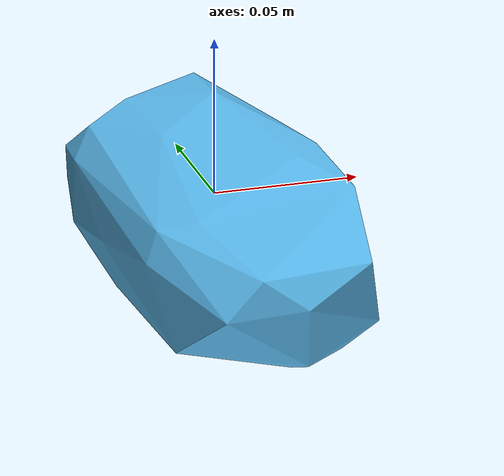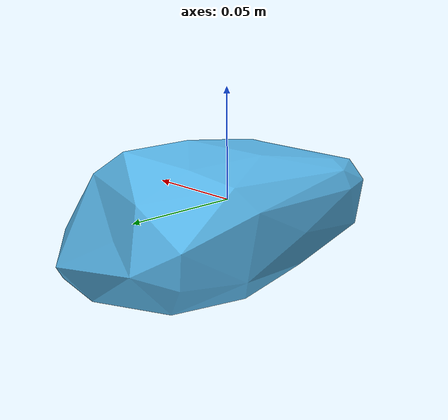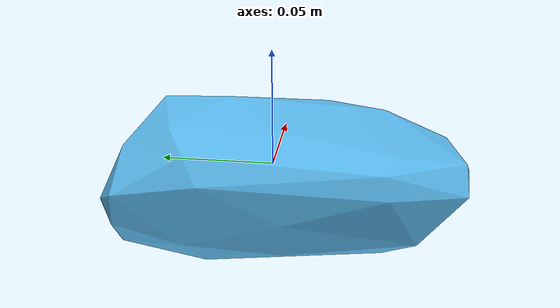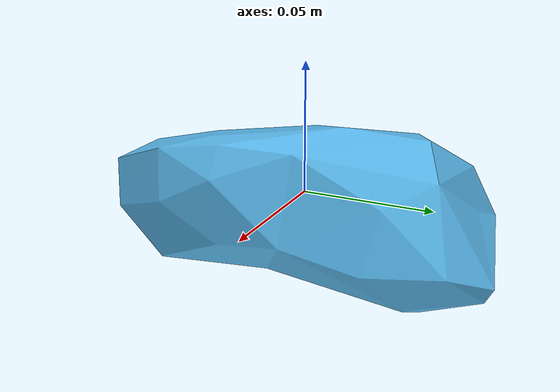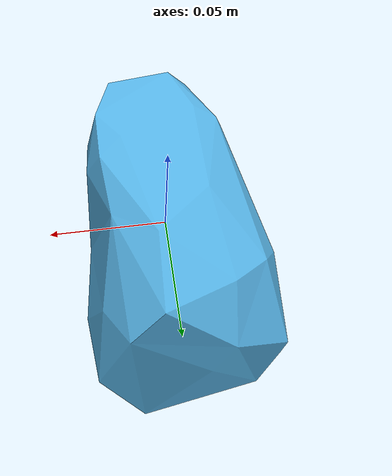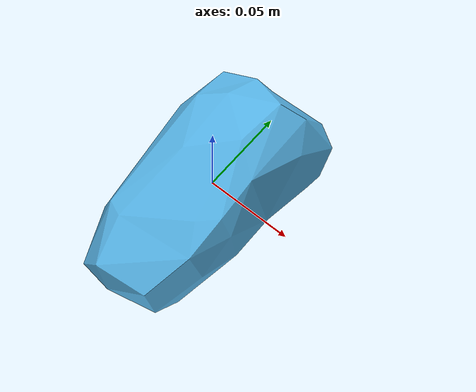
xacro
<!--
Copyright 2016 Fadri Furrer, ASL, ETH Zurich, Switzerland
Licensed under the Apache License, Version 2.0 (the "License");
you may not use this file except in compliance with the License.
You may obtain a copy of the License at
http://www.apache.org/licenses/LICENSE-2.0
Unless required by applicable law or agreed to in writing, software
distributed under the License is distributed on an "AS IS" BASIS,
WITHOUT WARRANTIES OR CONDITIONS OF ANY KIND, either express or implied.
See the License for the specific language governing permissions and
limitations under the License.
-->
<?xml version="1.0"?>

<robot name="2_poly" xmlns:xacro="http://ros.org/wiki/xacro">
  <xacro:property name="mesh_file" value="package://urdf_models/meshes/2_stone.dae" />
  <xacro:property name="mass" value="1" />
  <link name="base_link"></link>

  <joint name="base_joint" type="fixed">
    <origin xyz="0 0 0" rpy="0 0 0" />
    <parent link="base_link" />
    <child link="base_link_inertia" />
  </joint>
  <link name="base_link_inertia">
      <inertial>
        <mass value="${mass}" />  <!-- [kg] -->
        <origin xyz=" -0.002491 -0.000222 -0.004263" />
        <inertia ixx="0.065740e-02" ixy="0.001483e-02" 		ixz="-0.000435e-02"
                			      	      iyy="0.021578e-02"  	iyz="0.000101e-02"
                 								    		                  izz="0.0720994e-02" />
        </inertial>

      <visual>
        <origin xyz="0 0 0" rpy="0 0 0" />
        <geometry>
          <mesh filename="${mesh_file}" scale="1 1 1" />
        </geometry>
      </visual>

      <collision>
        <origin xyz="0 0 0" rpy="0 0 0" />
        <geometry>
          <mesh filename="${mesh_file}" scale="1 1 1" />
        </geometry>
      </collision>
  </link>

  <gazebo reference="base_link">
      <mu1 value="1.2"/>
      <mu2 value="1.1"/>
      <kp  value="5000000.0" />
      <kd  value="1.0" />
      <fdir1 value="1 0 0"/>
      <collision>
	        <surface>
	          <bounce>
	            <restitution_coefficient> 0.1 </restitution_coefficient>
	            <threshold>0.</threshold>
	          </bounce>
		      <contact>
		          <ode>
		            <max_vel>0.1</max_vel>
		            <min_depth>0.001</min_depth>
		          </ode>
		      </contact>
	        </surface>
	   </collision>
      <material name="Gray">
	    <color rgba="0.8 0.8 0.8 1"/>
	  </material>
      <turnGravityOff>false</turnGravityOff>
  </gazebo>

</robot>
